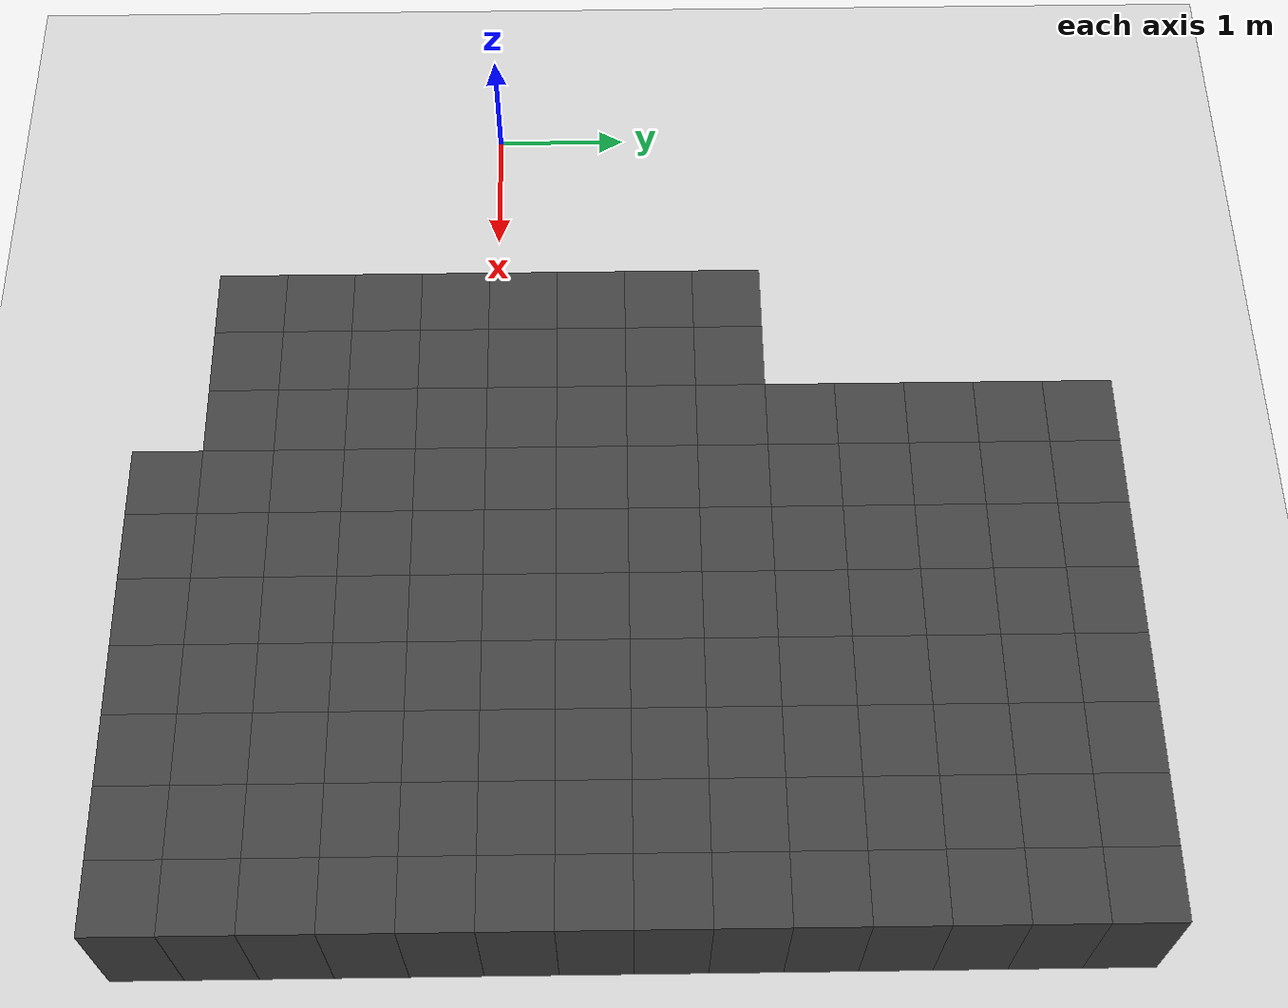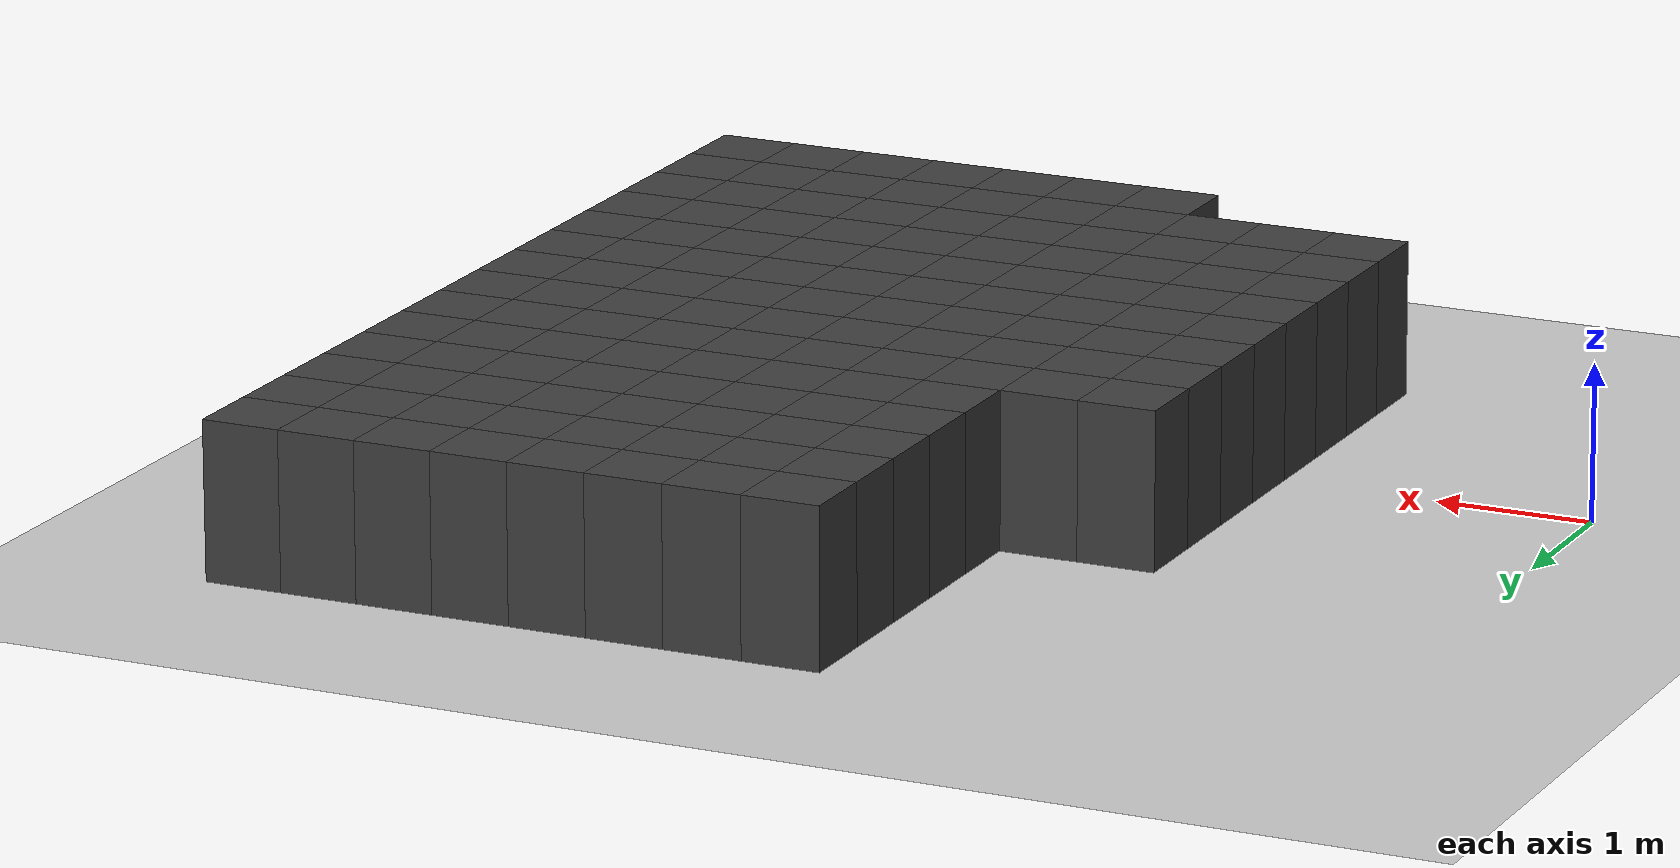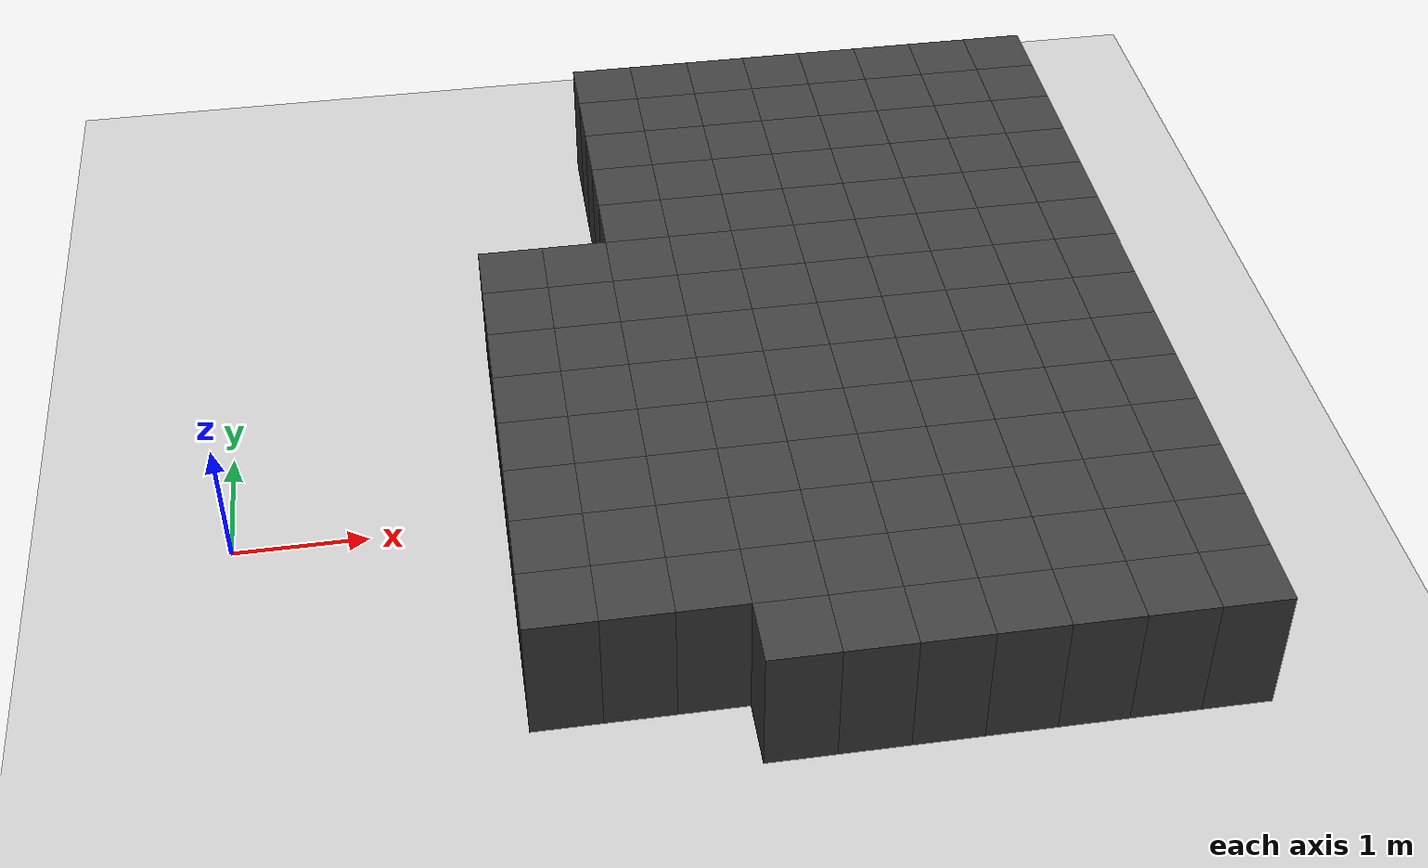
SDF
<sdf version="1.7">
 <world name="map_14190">
  <model name="ground_plane">
   <static>true</static>
   <link name="link">
    <collision name="collision">
     <geometry><plane><normal>0 0 1</normal><size>200 200</size></plane></geometry>
    </collision>
    <visual name="visual">
     <geometry><plane><normal>0 0 1</normal><size>200 200</size></plane></geometry>
     <material><ambient>0.8 0.8 0.8 1</ambient><diffuse>0.8 0.8 0.8 1</diffuse></material>
    </visual>
   </link>
  </model>
  <model name="maze_environment">
   <static>true</static>
   <link name="wall_578">
    <pose>3.250 4.250 0.500 0 0 0</pose>
    <collision name="col"><geometry><box><size>0.5 0.5 1.0</size></box></geometry></collision>
    <visual name="vis">
     <geometry><box><size>0.5 0.5 1.0</size></box></geometry>
     <material><ambient>0.15 0.15 0.15 1</ambient><diffuse>0.25 0.25 0.25 1</diffuse></material>
    </visual>
   </link>
   <link name="wall_579">
    <pose>3.750 4.250 0.500 0 0 0</pose>
    <collision name="col"><geometry><box><size>0.5 0.5 1.0</size></box></geometry></collision>
    <visual name="vis">
     <geometry><box><size>0.5 0.5 1.0</size></box></geometry>
     <material><ambient>0.15 0.15 0.15 1</ambient><diffuse>0.25 0.25 0.25 1</diffuse></material>
    </visual>
   </link>
   <link name="wall_580">
    <pose>4.250 4.250 0.500 0 0 0</pose>
    <collision name="col"><geometry><box><size>0.5 0.5 1.0</size></box></geometry></collision>
    <visual name="vis">
     <geometry><box><size>0.5 0.5 1.0</size></box></geometry>
     <material><ambient>0.15 0.15 0.15 1</ambient><diffuse>0.25 0.25 0.25 1</diffuse></material>
    </visual>
   </link>
   <link name="wall_581">
    <pose>4.750 4.250 0.500 0 0 0</pose>
    <collision name="col"><geometry><box><size>0.5 0.5 1.0</size></box></geometry></collision>
    <visual name="vis">
     <geometry><box><size>0.5 0.5 1.0</size></box></geometry>
     <material><ambient>0.15 0.15 0.15 1</ambient><diffuse>0.25 0.25 0.25 1</diffuse></material>
    </visual>
   </link>
   <link name="wall_582">
    <pose>5.250 4.250 0.500 0 0 0</pose>
    <collision name="col"><geometry><box><size>0.5 0.5 1.0</size></box></geometry></collision>
    <visual name="vis">
     <geometry><box><size>0.5 0.5 1.0</size></box></geometry>
     <material><ambient>0.15 0.15 0.15 1</ambient><diffuse>0.25 0.25 0.25 1</diffuse></material>
    </visual>
   </link>
   <link name="wall_583">
    <pose>5.750 4.250 0.500 0 0 0</pose>
    <collision name="col"><geometry><box><size>0.5 0.5 1.0</size></box></geometry></collision>
    <visual name="vis">
     <geometry><box><size>0.5 0.5 1.0</size></box></geometry>
     <material><ambient>0.15 0.15 0.15 1</ambient><diffuse>0.25 0.25 0.25 1</diffuse></material>
    </visual>
   </link>
   <link name="wall_584">
    <pose>6.250 4.250 0.500 0 0 0</pose>
    <collision name="col"><geometry><box><size>0.5 0.5 1.0</size></box></geometry></collision>
    <visual name="vis">
     <geometry><box><size>0.5 0.5 1.0</size></box></geometry>
     <material><ambient>0.15 0.15 0.15 1</ambient><diffuse>0.25 0.25 0.25 1</diffuse></material>
    </visual>
   </link>
   <link name="wall_585">
    <pose>6.750 4.250 0.500 0 0 0</pose>
    <collision name="col"><geometry><box><size>0.5 0.5 1.0</size></box></geometry></collision>
    <visual name="vis">
     <geometry><box><size>0.5 0.5 1.0</size></box></geometry>
     <material><ambient>0.15 0.15 0.15 1</ambient><diffuse>0.25 0.25 0.25 1</diffuse></material>
    </visual>
   </link>
   <link name="wall_608">
    <pose>3.250 3.750 0.500 0 0 0</pose>
    <collision name="col"><geometry><box><size>0.5 0.5 1.0</size></box></geometry></collision>
    <visual name="vis">
     <geometry><box><size>0.5 0.5 1.0</size></box></geometry>
     <material><ambient>0.15 0.15 0.15 1</ambient><diffuse>0.25 0.25 0.25 1</diffuse></material>
    </visual>
   </link>
   <link name="wall_609">
    <pose>3.750 3.750 0.500 0 0 0</pose>
    <collision name="col"><geometry><box><size>0.5 0.5 1.0</size></box></geometry></collision>
    <visual name="vis">
     <geometry><box><size>0.5 0.5 1.0</size></box></geometry>
     <material><ambient>0.15 0.15 0.15 1</ambient><diffuse>0.25 0.25 0.25 1</diffuse></material>
    </visual>
   </link>
   <link name="wall_610">
    <pose>4.250 3.750 0.500 0 0 0</pose>
    <collision name="col"><geometry><box><size>0.5 0.5 1.0</size></box></geometry></collision>
    <visual name="vis">
     <geometry><box><size>0.5 0.5 1.0</size></box></geometry>
     <material><ambient>0.15 0.15 0.15 1</ambient><diffuse>0.25 0.25 0.25 1</diffuse></material>
    </visual>
   </link>
   <link name="wall_611">
    <pose>4.750 3.750 0.500 0 0 0</pose>
    <collision name="col"><geometry><box><size>0.5 0.5 1.0</size></box></geometry></collision>
    <visual name="vis">
     <geometry><box><size>0.5 0.5 1.0</size></box></geometry>
     <material><ambient>0.15 0.15 0.15 1</ambient><diffuse>0.25 0.25 0.25 1</diffuse></material>
    </visual>
   </link>
   <link name="wall_612">
    <pose>5.250 3.750 0.500 0 0 0</pose>
    <collision name="col"><geometry><box><size>0.5 0.5 1.0</size></box></geometry></collision>
    <visual name="vis">
     <geometry><box><size>0.5 0.5 1.0</size></box></geometry>
     <material><ambient>0.15 0.15 0.15 1</ambient><diffuse>0.25 0.25 0.25 1</diffuse></material>
    </visual>
   </link>
   <link name="wall_613">
    <pose>5.750 3.750 0.500 0 0 0</pose>
    <collision name="col"><geometry><box><size>0.5 0.5 1.0</size></box></geometry></collision>
    <visual name="vis">
     <geometry><box><size>0.5 0.5 1.0</size></box></geometry>
     <material><ambient>0.15 0.15 0.15 1</ambient><diffuse>0.25 0.25 0.25 1</diffuse></material>
    </visual>
   </link>
   <link name="wall_614">
    <pose>6.250 3.750 0.500 0 0 0</pose>
    <collision name="col"><geometry><box><size>0.5 0.5 1.0</size></box></geometry></collision>
    <visual name="vis">
     <geometry><box><size>0.5 0.5 1.0</size></box></geometry>
     <material><ambient>0.15 0.15 0.15 1</ambient><diffuse>0.25 0.25 0.25 1</diffuse></material>
    </visual>
   </link>
   <link name="wall_615">
    <pose>6.750 3.750 0.500 0 0 0</pose>
    <collision name="col"><geometry><box><size>0.5 0.5 1.0</size></box></geometry></collision>
    <visual name="vis">
     <geometry><box><size>0.5 0.5 1.0</size></box></geometry>
     <material><ambient>0.15 0.15 0.15 1</ambient><diffuse>0.25 0.25 0.25 1</diffuse></material>
    </visual>
   </link>
   <link name="wall_641">
    <pose>3.250 3.250 0.500 0 0 0</pose>
    <collision name="col"><geometry><box><size>0.5 0.5 1.0</size></box></geometry></collision>
    <visual name="vis">
     <geometry><box><size>0.5 0.5 1.0</size></box></geometry>
     <material><ambient>0.15 0.15 0.15 1</ambient><diffuse>0.25 0.25 0.25 1</diffuse></material>
    </visual>
   </link>
   <link name="wall_642">
    <pose>3.750 3.250 0.500 0 0 0</pose>
    <collision name="col"><geometry><box><size>0.5 0.5 1.0</size></box></geometry></collision>
    <visual name="vis">
     <geometry><box><size>0.5 0.5 1.0</size></box></geometry>
     <material><ambient>0.15 0.15 0.15 1</ambient><diffuse>0.25 0.25 0.25 1</diffuse></material>
    </visual>
   </link>
   <link name="wall_643">
    <pose>4.250 3.250 0.500 0 0 0</pose>
    <collision name="col"><geometry><box><size>0.5 0.5 1.0</size></box></geometry></collision>
    <visual name="vis">
     <geometry><box><size>0.5 0.5 1.0</size></box></geometry>
     <material><ambient>0.15 0.15 0.15 1</ambient><diffuse>0.25 0.25 0.25 1</diffuse></material>
    </visual>
   </link>
   <link name="wall_644">
    <pose>4.750 3.250 0.500 0 0 0</pose>
    <collision name="col"><geometry><box><size>0.5 0.5 1.0</size></box></geometry></collision>
    <visual name="vis">
     <geometry><box><size>0.5 0.5 1.0</size></box></geometry>
     <material><ambient>0.15 0.15 0.15 1</ambient><diffuse>0.25 0.25 0.25 1</diffuse></material>
    </visual>
   </link>
   <link name="wall_645">
    <pose>5.250 3.250 0.500 0 0 0</pose>
    <collision name="col"><geometry><box><size>0.5 0.5 1.0</size></box></geometry></collision>
    <visual name="vis">
     <geometry><box><size>0.5 0.5 1.0</size></box></geometry>
     <material><ambient>0.15 0.15 0.15 1</ambient><diffuse>0.25 0.25 0.25 1</diffuse></material>
    </visual>
   </link>
   <link name="wall_646">
    <pose>5.750 3.250 0.500 0 0 0</pose>
    <collision name="col"><geometry><box><size>0.5 0.5 1.0</size></box></geometry></collision>
    <visual name="vis">
     <geometry><box><size>0.5 0.5 1.0</size></box></geometry>
     <material><ambient>0.15 0.15 0.15 1</ambient><diffuse>0.25 0.25 0.25 1</diffuse></material>
    </visual>
   </link>
   <link name="wall_647">
    <pose>6.250 3.250 0.500 0 0 0</pose>
    <collision name="col"><geometry><box><size>0.5 0.5 1.0</size></box></geometry></collision>
    <visual name="vis">
     <geometry><box><size>0.5 0.5 1.0</size></box></geometry>
     <material><ambient>0.15 0.15 0.15 1</ambient><diffuse>0.25 0.25 0.25 1</diffuse></material>
    </visual>
   </link>
   <link name="wall_648">
    <pose>6.750 3.250 0.500 0 0 0</pose>
    <collision name="col"><geometry><box><size>0.5 0.5 1.0</size></box></geometry></collision>
    <visual name="vis">
     <geometry><box><size>0.5 0.5 1.0</size></box></geometry>
     <material><ambient>0.15 0.15 0.15 1</ambient><diffuse>0.25 0.25 0.25 1</diffuse></material>
    </visual>
   </link>
   <link name="wall_683">
    <pose>3.250 2.750 0.500 0 0 0</pose>
    <collision name="col"><geometry><box><size>0.5 0.5 1.0</size></box></geometry></collision>
    <visual name="vis">
     <geometry><box><size>0.5 0.5 1.0</size></box></geometry>
     <material><ambient>0.15 0.15 0.15 1</ambient><diffuse>0.25 0.25 0.25 1</diffuse></material>
    </visual>
   </link>
   <link name="wall_684">
    <pose>3.750 2.750 0.500 0 0 0</pose>
    <collision name="col"><geometry><box><size>0.5 0.5 1.0</size></box></geometry></collision>
    <visual name="vis">
     <geometry><box><size>0.5 0.5 1.0</size></box></geometry>
     <material><ambient>0.15 0.15 0.15 1</ambient><diffuse>0.25 0.25 0.25 1</diffuse></material>
    </visual>
   </link>
   <link name="wall_685">
    <pose>4.250 2.750 0.500 0 0 0</pose>
    <collision name="col"><geometry><box><size>0.5 0.5 1.0</size></box></geometry></collision>
    <visual name="vis">
     <geometry><box><size>0.5 0.5 1.0</size></box></geometry>
     <material><ambient>0.15 0.15 0.15 1</ambient><diffuse>0.25 0.25 0.25 1</diffuse></material>
    </visual>
   </link>
   <link name="wall_686">
    <pose>4.750 2.750 0.500 0 0 0</pose>
    <collision name="col"><geometry><box><size>0.5 0.5 1.0</size></box></geometry></collision>
    <visual name="vis">
     <geometry><box><size>0.5 0.5 1.0</size></box></geometry>
     <material><ambient>0.15 0.15 0.15 1</ambient><diffuse>0.25 0.25 0.25 1</diffuse></material>
    </visual>
   </link>
   <link name="wall_687">
    <pose>5.250 2.750 0.500 0 0 0</pose>
    <collision name="col"><geometry><box><size>0.5 0.5 1.0</size></box></geometry></collision>
    <visual name="vis">
     <geometry><box><size>0.5 0.5 1.0</size></box></geometry>
     <material><ambient>0.15 0.15 0.15 1</ambient><diffuse>0.25 0.25 0.25 1</diffuse></material>
    </visual>
   </link>
   <link name="wall_688">
    <pose>5.750 2.750 0.500 0 0 0</pose>
    <collision name="col"><geometry><box><size>0.5 0.5 1.0</size></box></geometry></collision>
    <visual name="vis">
     <geometry><box><size>0.5 0.5 1.0</size></box></geometry>
     <material><ambient>0.15 0.15 0.15 1</ambient><diffuse>0.25 0.25 0.25 1</diffuse></material>
    </visual>
   </link>
   <link name="wall_689">
    <pose>6.250 2.750 0.500 0 0 0</pose>
    <collision name="col"><geometry><box><size>0.5 0.5 1.0</size></box></geometry></collision>
    <visual name="vis">
     <geometry><box><size>0.5 0.5 1.0</size></box></geometry>
     <material><ambient>0.15 0.15 0.15 1</ambient><diffuse>0.25 0.25 0.25 1</diffuse></material>
    </visual>
   </link>
   <link name="wall_690">
    <pose>6.750 2.750 0.500 0 0 0</pose>
    <collision name="col"><geometry><box><size>0.5 0.5 1.0</size></box></geometry></collision>
    <visual name="vis">
     <geometry><box><size>0.5 0.5 1.0</size></box></geometry>
     <material><ambient>0.15 0.15 0.15 1</ambient><diffuse>0.25 0.25 0.25 1</diffuse></material>
    </visual>
   </link>
   <link name="wall_725">
    <pose>3.250 2.250 0.500 0 0 0</pose>
    <collision name="col"><geometry><box><size>0.5 0.5 1.0</size></box></geometry></collision>
    <visual name="vis">
     <geometry><box><size>0.5 0.5 1.0</size></box></geometry>
     <material><ambient>0.15 0.15 0.15 1</ambient><diffuse>0.25 0.25 0.25 1</diffuse></material>
    </visual>
   </link>
   <link name="wall_726">
    <pose>3.750 2.250 0.500 0 0 0</pose>
    <collision name="col"><geometry><box><size>0.5 0.5 1.0</size></box></geometry></collision>
    <visual name="vis">
     <geometry><box><size>0.5 0.5 1.0</size></box></geometry>
     <material><ambient>0.15 0.15 0.15 1</ambient><diffuse>0.25 0.25 0.25 1</diffuse></material>
    </visual>
   </link>
   <link name="wall_727">
    <pose>4.250 2.250 0.500 0 0 0</pose>
    <collision name="col"><geometry><box><size>0.5 0.5 1.0</size></box></geometry></collision>
    <visual name="vis">
     <geometry><box><size>0.5 0.5 1.0</size></box></geometry>
     <material><ambient>0.15 0.15 0.15 1</ambient><diffuse>0.25 0.25 0.25 1</diffuse></material>
    </visual>
   </link>
   <link name="wall_728">
    <pose>4.750 2.250 0.500 0 0 0</pose>
    <collision name="col"><geometry><box><size>0.5 0.5 1.0</size></box></geometry></collision>
    <visual name="vis">
     <geometry><box><size>0.5 0.5 1.0</size></box></geometry>
     <material><ambient>0.15 0.15 0.15 1</ambient><diffuse>0.25 0.25 0.25 1</diffuse></material>
    </visual>
   </link>
   <link name="wall_729">
    <pose>5.250 2.250 0.500 0 0 0</pose>
    <collision name="col"><geometry><box><size>0.5 0.5 1.0</size></box></geometry></collision>
    <visual name="vis">
     <geometry><box><size>0.5 0.5 1.0</size></box></geometry>
     <material><ambient>0.15 0.15 0.15 1</ambient><diffuse>0.25 0.25 0.25 1</diffuse></material>
    </visual>
   </link>
   <link name="wall_730">
    <pose>5.750 2.250 0.500 0 0 0</pose>
    <collision name="col"><geometry><box><size>0.5 0.5 1.0</size></box></geometry></collision>
    <visual name="vis">
     <geometry><box><size>0.5 0.5 1.0</size></box></geometry>
     <material><ambient>0.15 0.15 0.15 1</ambient><diffuse>0.25 0.25 0.25 1</diffuse></material>
    </visual>
   </link>
   <link name="wall_731">
    <pose>6.250 2.250 0.500 0 0 0</pose>
    <collision name="col"><geometry><box><size>0.5 0.5 1.0</size></box></geometry></collision>
    <visual name="vis">
     <geometry><box><size>0.5 0.5 1.0</size></box></geometry>
     <material><ambient>0.15 0.15 0.15 1</ambient><diffuse>0.25 0.25 0.25 1</diffuse></material>
    </visual>
   </link>
   <link name="wall_732">
    <pose>6.750 2.250 0.500 0 0 0</pose>
    <collision name="col"><geometry><box><size>0.5 0.5 1.0</size></box></geometry></collision>
    <visual name="vis">
     <geometry><box><size>0.5 0.5 1.0</size></box></geometry>
     <material><ambient>0.15 0.15 0.15 1</ambient><diffuse>0.25 0.25 0.25 1</diffuse></material>
    </visual>
   </link>
   <link name="wall_765">
    <pose>2.250 1.750 0.500 0 0 0</pose>
    <collision name="col"><geometry><box><size>0.5 0.5 1.0</size></box></geometry></collision>
    <visual name="vis">
     <geometry><box><size>0.5 0.5 1.0</size></box></geometry>
     <material><ambient>0.15 0.15 0.15 1</ambient><diffuse>0.25 0.25 0.25 1</diffuse></material>
    </visual>
   </link>
   <link name="wall_766">
    <pose>2.750 1.750 0.500 0 0 0</pose>
    <collision name="col"><geometry><box><size>0.5 0.5 1.0</size></box></geometry></collision>
    <visual name="vis">
     <geometry><box><size>0.5 0.5 1.0</size></box></geometry>
     <material><ambient>0.15 0.15 0.15 1</ambient><diffuse>0.25 0.25 0.25 1</diffuse></material>
    </visual>
   </link>
   <link name="wall_767">
    <pose>3.250 1.750 0.500 0 0 0</pose>
    <collision name="col"><geometry><box><size>0.5 0.5 1.0</size></box></geometry></collision>
    <visual name="vis">
     <geometry><box><size>0.5 0.5 1.0</size></box></geometry>
     <material><ambient>0.15 0.15 0.15 1</ambient><diffuse>0.25 0.25 0.25 1</diffuse></material>
    </visual>
   </link>
   <link name="wall_768">
    <pose>3.750 1.750 0.500 0 0 0</pose>
    <collision name="col"><geometry><box><size>0.5 0.5 1.0</size></box></geometry></collision>
    <visual name="vis">
     <geometry><box><size>0.5 0.5 1.0</size></box></geometry>
     <material><ambient>0.15 0.15 0.15 1</ambient><diffuse>0.25 0.25 0.25 1</diffuse></material>
    </visual>
   </link>
   <link name="wall_769">
    <pose>4.250 1.750 0.500 0 0 0</pose>
    <collision name="col"><geometry><box><size>0.5 0.5 1.0</size></box></geometry></collision>
    <visual name="vis">
     <geometry><box><size>0.5 0.5 1.0</size></box></geometry>
     <material><ambient>0.15 0.15 0.15 1</ambient><diffuse>0.25 0.25 0.25 1</diffuse></material>
    </visual>
   </link>
   <link name="wall_770">
    <pose>4.750 1.750 0.500 0 0 0</pose>
    <collision name="col"><geometry><box><size>0.5 0.5 1.0</size></box></geometry></collision>
    <visual name="vis">
     <geometry><box><size>0.5 0.5 1.0</size></box></geometry>
     <material><ambient>0.15 0.15 0.15 1</ambient><diffuse>0.25 0.25 0.25 1</diffuse></material>
    </visual>
   </link>
   <link name="wall_771">
    <pose>5.250 1.750 0.500 0 0 0</pose>
    <collision name="col"><geometry><box><size>0.5 0.5 1.0</size></box></geometry></collision>
    <visual name="vis">
     <geometry><box><size>0.5 0.5 1.0</size></box></geometry>
     <material><ambient>0.15 0.15 0.15 1</ambient><diffuse>0.25 0.25 0.25 1</diffuse></material>
    </visual>
   </link>
   <link name="wall_772">
    <pose>5.750 1.750 0.500 0 0 0</pose>
    <collision name="col"><geometry><box><size>0.5 0.5 1.0</size></box></geometry></collision>
    <visual name="vis">
     <geometry><box><size>0.5 0.5 1.0</size></box></geometry>
     <material><ambient>0.15 0.15 0.15 1</ambient><diffuse>0.25 0.25 0.25 1</diffuse></material>
    </visual>
   </link>
   <link name="wall_773">
    <pose>6.250 1.750 0.500 0 0 0</pose>
    <collision name="col"><geometry><box><size>0.5 0.5 1.0</size></box></geometry></collision>
    <visual name="vis">
     <geometry><box><size>0.5 0.5 1.0</size></box></geometry>
     <material><ambient>0.15 0.15 0.15 1</ambient><diffuse>0.25 0.25 0.25 1</diffuse></material>
    </visual>
   </link>
   <link name="wall_774">
    <pose>6.750 1.750 0.500 0 0 0</pose>
    <collision name="col"><geometry><box><size>0.5 0.5 1.0</size></box></geometry></collision>
    <visual name="vis">
     <geometry><box><size>0.5 0.5 1.0</size></box></geometry>
     <material><ambient>0.15 0.15 0.15 1</ambient><diffuse>0.25 0.25 0.25 1</diffuse></material>
    </visual>
   </link>
   <link name="wall_799">
    <pose>2.250 1.250 0.500 0 0 0</pose>
    <collision name="col"><geometry><box><size>0.5 0.5 1.0</size></box></geometry></collision>
    <visual name="vis">
     <geometry><box><size>0.5 0.5 1.0</size></box></geometry>
     <material><ambient>0.15 0.15 0.15 1</ambient><diffuse>0.25 0.25 0.25 1</diffuse></material>
    </visual>
   </link>
   <link name="wall_800">
    <pose>2.750 1.250 0.500 0 0 0</pose>
    <collision name="col"><geometry><box><size>0.5 0.5 1.0</size></box></geometry></collision>
    <visual name="vis">
     <geometry><box><size>0.5 0.5 1.0</size></box></geometry>
     <material><ambient>0.15 0.15 0.15 1</ambient><diffuse>0.25 0.25 0.25 1</diffuse></material>
    </visual>
   </link>
   <link name="wall_801">
    <pose>3.250 1.250 0.500 0 0 0</pose>
    <collision name="col"><geometry><box><size>0.5 0.5 1.0</size></box></geometry></collision>
    <visual name="vis">
     <geometry><box><size>0.5 0.5 1.0</size></box></geometry>
     <material><ambient>0.15 0.15 0.15 1</ambient><diffuse>0.25 0.25 0.25 1</diffuse></material>
    </visual>
   </link>
   <link name="wall_802">
    <pose>3.750 1.250 0.500 0 0 0</pose>
    <collision name="col"><geometry><box><size>0.5 0.5 1.0</size></box></geometry></collision>
    <visual name="vis">
     <geometry><box><size>0.5 0.5 1.0</size></box></geometry>
     <material><ambient>0.15 0.15 0.15 1</ambient><diffuse>0.25 0.25 0.25 1</diffuse></material>
    </visual>
   </link>
   <link name="wall_803">
    <pose>4.250 1.250 0.500 0 0 0</pose>
    <collision name="col"><geometry><box><size>0.5 0.5 1.0</size></box></geometry></collision>
    <visual name="vis">
     <geometry><box><size>0.5 0.5 1.0</size></box></geometry>
     <material><ambient>0.15 0.15 0.15 1</ambient><diffuse>0.25 0.25 0.25 1</diffuse></material>
    </visual>
   </link>
   <link name="wall_804">
    <pose>4.750 1.250 0.500 0 0 0</pose>
    <collision name="col"><geometry><box><size>0.5 0.5 1.0</size></box></geometry></collision>
    <visual name="vis">
     <geometry><box><size>0.5 0.5 1.0</size></box></geometry>
     <material><ambient>0.15 0.15 0.15 1</ambient><diffuse>0.25 0.25 0.25 1</diffuse></material>
    </visual>
   </link>
   <link name="wall_805">
    <pose>5.250 1.250 0.500 0 0 0</pose>
    <collision name="col"><geometry><box><size>0.5 0.5 1.0</size></box></geometry></collision>
    <visual name="vis">
     <geometry><box><size>0.5 0.5 1.0</size></box></geometry>
     <material><ambient>0.15 0.15 0.15 1</ambient><diffuse>0.25 0.25 0.25 1</diffuse></material>
    </visual>
   </link>
   <link name="wall_806">
    <pose>5.750 1.250 0.500 0 0 0</pose>
    <collision name="col"><geometry><box><size>0.5 0.5 1.0</size></box></geometry></collision>
    <visual name="vis">
     <geometry><box><size>0.5 0.5 1.0</size></box></geometry>
     <material><ambient>0.15 0.15 0.15 1</ambient><diffuse>0.25 0.25 0.25 1</diffuse></material>
    </visual>
   </link>
   <link name="wall_807">
    <pose>6.250 1.250 0.500 0 0 0</pose>
    <collision name="col"><geometry><box><size>0.5 0.5 1.0</size></box></geometry></collision>
    <visual name="vis">
     <geometry><box><size>0.5 0.5 1.0</size></box></geometry>
     <material><ambient>0.15 0.15 0.15 1</ambient><diffuse>0.25 0.25 0.25 1</diffuse></material>
    </visual>
   </link>
   <link name="wall_808">
    <pose>6.750 1.250 0.500 0 0 0</pose>
    <collision name="col"><geometry><box><size>0.5 0.5 1.0</size></box></geometry></collision>
    <visual name="vis">
     <geometry><box><size>0.5 0.5 1.0</size></box></geometry>
     <material><ambient>0.15 0.15 0.15 1</ambient><diffuse>0.25 0.25 0.25 1</diffuse></material>
    </visual>
   </link>
   <link name="wall_833">
    <pose>2.250 0.750 0.500 0 0 0</pose>
    <collision name="col"><geometry><box><size>0.5 0.5 1.0</size></box></geometry></collision>
    <visual name="vis">
     <geometry><box><size>0.5 0.5 1.0</size></box></geometry>
     <material><ambient>0.15 0.15 0.15 1</ambient><diffuse>0.25 0.25 0.25 1</diffuse></material>
    </visual>
   </link>
   <link name="wall_834">
    <pose>2.750 0.750 0.500 0 0 0</pose>
    <collision name="col"><geometry><box><size>0.5 0.5 1.0</size></box></geometry></collision>
    <visual name="vis">
     <geometry><box><size>0.5 0.5 1.0</size></box></geometry>
     <material><ambient>0.15 0.15 0.15 1</ambient><diffuse>0.25 0.25 0.25 1</diffuse></material>
    </visual>
   </link>
   <link name="wall_835">
    <pose>3.250 0.750 0.500 0 0 0</pose>
    <collision name="col"><geometry><box><size>0.5 0.5 1.0</size></box></geometry></collision>
    <visual name="vis">
     <geometry><box><size>0.5 0.5 1.0</size></box></geometry>
     <material><ambient>0.15 0.15 0.15 1</ambient><diffuse>0.25 0.25 0.25 1</diffuse></material>
    </visual>
   </link>
   <link name="wall_836">
    <pose>3.750 0.750 0.500 0 0 0</pose>
    <collision name="col"><geometry><box><size>0.5 0.5 1.0</size></box></geometry></collision>
    <visual name="vis">
     <geometry><box><size>0.5 0.5 1.0</size></box></geometry>
     <material><ambient>0.15 0.15 0.15 1</ambient><diffuse>0.25 0.25 0.25 1</diffuse></material>
    </visual>
   </link>
   <link name="wall_837">
    <pose>4.250 0.750 0.500 0 0 0</pose>
    <collision name="col"><geometry><box><size>0.5 0.5 1.0</size></box></geometry></collision>
    <visual name="vis">
     <geometry><box><size>0.5 0.5 1.0</size></box></geometry>
     <material><ambient>0.15 0.15 0.15 1</ambient><diffuse>0.25 0.25 0.25 1</diffuse></material>
    </visual>
   </link>
   <link name="wall_838">
    <pose>4.750 0.750 0.500 0 0 0</pose>
    <collision name="col"><geometry><box><size>0.5 0.5 1.0</size></box></geometry></collision>
    <visual name="vis">
     <geometry><box><size>0.5 0.5 1.0</size></box></geometry>
     <material><ambient>0.15 0.15 0.15 1</ambient><diffuse>0.25 0.25 0.25 1</diffuse></material>
    </visual>
   </link>
   <link name="wall_839">
    <pose>5.250 0.750 0.500 0 0 0</pose>
    <collision name="col"><geometry><box><size>0.5 0.5 1.0</size></box></geometry></collision>
    <visual name="vis">
     <geometry><box><size>0.5 0.5 1.0</size></box></geometry>
     <material><ambient>0.15 0.15 0.15 1</ambient><diffuse>0.25 0.25 0.25 1</diffuse></material>
    </visual>
   </link>
   <link name="wall_840">
    <pose>5.750 0.750 0.500 0 0 0</pose>
    <collision name="col"><geometry><box><size>0.5 0.5 1.0</size></box></geometry></collision>
    <visual name="vis">
     <geometry><box><size>0.5 0.5 1.0</size></box></geometry>
     <material><ambient>0.15 0.15 0.15 1</ambient><diffuse>0.25 0.25 0.25 1</diffuse></material>
    </visual>
   </link>
   <link name="wall_841">
    <pose>6.250 0.750 0.500 0 0 0</pose>
    <collision name="col"><geometry><box><size>0.5 0.5 1.0</size></box></geometry></collision>
    <visual name="vis">
     <geometry><box><size>0.5 0.5 1.0</size></box></geometry>
     <material><ambient>0.15 0.15 0.15 1</ambient><diffuse>0.25 0.25 0.25 1</diffuse></material>
    </visual>
   </link>
   <link name="wall_842">
    <pose>6.750 0.750 0.500 0 0 0</pose>
    <collision name="col"><geometry><box><size>0.5 0.5 1.0</size></box></geometry></collision>
    <visual name="vis">
     <geometry><box><size>0.5 0.5 1.0</size></box></geometry>
     <material><ambient>0.15 0.15 0.15 1</ambient><diffuse>0.25 0.25 0.25 1</diffuse></material>
    </visual>
   </link>
   <link name="wall_867">
    <pose>2.250 0.250 0.500 0 0 0</pose>
    <collision name="col"><geometry><box><size>0.5 0.5 1.0</size></box></geometry></collision>
    <visual name="vis">
     <geometry><box><size>0.5 0.5 1.0</size></box></geometry>
     <material><ambient>0.15 0.15 0.15 1</ambient><diffuse>0.25 0.25 0.25 1</diffuse></material>
    </visual>
   </link>
   <link name="wall_868">
    <pose>2.750 0.250 0.500 0 0 0</pose>
    <collision name="col"><geometry><box><size>0.5 0.5 1.0</size></box></geometry></collision>
    <visual name="vis">
     <geometry><box><size>0.5 0.5 1.0</size></box></geometry>
     <material><ambient>0.15 0.15 0.15 1</ambient><diffuse>0.25 0.25 0.25 1</diffuse></material>
    </visual>
   </link>
   <link name="wall_869">
    <pose>3.250 0.250 0.500 0 0 0</pose>
    <collision name="col"><geometry><box><size>0.5 0.5 1.0</size></box></geometry></collision>
    <visual name="vis">
     <geometry><box><size>0.5 0.5 1.0</size></box></geometry>
     <material><ambient>0.15 0.15 0.15 1</ambient><diffuse>0.25 0.25 0.25 1</diffuse></material>
    </visual>
   </link>
   <link name="wall_870">
    <pose>3.750 0.250 0.500 0 0 0</pose>
    <collision name="col"><geometry><box><size>0.5 0.5 1.0</size></box></geometry></collision>
    <visual name="vis">
     <geometry><box><size>0.5 0.5 1.0</size></box></geometry>
     <material><ambient>0.15 0.15 0.15 1</ambient><diffuse>0.25 0.25 0.25 1</diffuse></material>
    </visual>
   </link>
   <link name="wall_871">
    <pose>4.250 0.250 0.500 0 0 0</pose>
    <collision name="col"><geometry><box><size>0.5 0.5 1.0</size></box></geometry></collision>
    <visual name="vis">
     <geometry><box><size>0.5 0.5 1.0</size></box></geometry>
     <material><ambient>0.15 0.15 0.15 1</ambient><diffuse>0.25 0.25 0.25 1</diffuse></material>
    </visual>
   </link>
   <link name="wall_872">
    <pose>4.750 0.250 0.500 0 0 0</pose>
    <collision name="col"><geometry><box><size>0.5 0.5 1.0</size></box></geometry></collision>
    <visual name="vis">
     <geometry><box><size>0.5 0.5 1.0</size></box></geometry>
     <material><ambient>0.15 0.15 0.15 1</ambient><diffuse>0.25 0.25 0.25 1</diffuse></material>
    </visual>
   </link>
   <link name="wall_873">
    <pose>5.250 0.250 0.500 0 0 0</pose>
    <collision name="col"><geometry><box><size>0.5 0.5 1.0</size></box></geometry></collision>
    <visual name="vis">
     <geometry><box><size>0.5 0.5 1.0</size></box></geometry>
     <material><ambient>0.15 0.15 0.15 1</ambient><diffuse>0.25 0.25 0.25 1</diffuse></material>
    </visual>
   </link>
   <link name="wall_874">
    <pose>5.750 0.250 0.500 0 0 0</pose>
    <collision name="col"><geometry><box><size>0.5 0.5 1.0</size></box></geometry></collision>
    <visual name="vis">
     <geometry><box><size>0.5 0.5 1.0</size></box></geometry>
     <material><ambient>0.15 0.15 0.15 1</ambient><diffuse>0.25 0.25 0.25 1</diffuse></material>
    </visual>
   </link>
   <link name="wall_875">
    <pose>6.250 0.250 0.500 0 0 0</pose>
    <collision name="col"><geometry><box><size>0.5 0.5 1.0</size></box></geometry></collision>
    <visual name="vis">
     <geometry><box><size>0.5 0.5 1.0</size></box></geometry>
     <material><ambient>0.15 0.15 0.15 1</ambient><diffuse>0.25 0.25 0.25 1</diffuse></material>
    </visual>
   </link>
   <link name="wall_876">
    <pose>6.750 0.250 0.500 0 0 0</pose>
    <collision name="col"><geometry><box><size>0.5 0.5 1.0</size></box></geometry></collision>
    <visual name="vis">
     <geometry><box><size>0.5 0.5 1.0</size></box></geometry>
     <material><ambient>0.15 0.15 0.15 1</ambient><diffuse>0.25 0.25 0.25 1</diffuse></material>
    </visual>
   </link>
   <link name="wall_901">
    <pose>2.250 -0.250 0.500 0 0 0</pose>
    <collision name="col"><geometry><box><size>0.5 0.5 1.0</size></box></geometry></collision>
    <visual name="vis">
     <geometry><box><size>0.5 0.5 1.0</size></box></geometry>
     <material><ambient>0.15 0.15 0.15 1</ambient><diffuse>0.25 0.25 0.25 1</diffuse></material>
    </visual>
   </link>
   <link name="wall_902">
    <pose>2.750 -0.250 0.500 0 0 0</pose>
    <collision name="col"><geometry><box><size>0.5 0.5 1.0</size></box></geometry></collision>
    <visual name="vis">
     <geometry><box><size>0.5 0.5 1.0</size></box></geometry>
     <material><ambient>0.15 0.15 0.15 1</ambient><diffuse>0.25 0.25 0.25 1</diffuse></material>
    </visual>
   </link>
   <link name="wall_903">
    <pose>3.250 -0.250 0.500 0 0 0</pose>
    <collision name="col"><geometry><box><size>0.5 0.5 1.0</size></box></geometry></collision>
    <visual name="vis">
     <geometry><box><size>0.5 0.5 1.0</size></box></geometry>
     <material><ambient>0.15 0.15 0.15 1</ambient><diffuse>0.25 0.25 0.25 1</diffuse></material>
    </visual>
   </link>
   <link name="wall_904">
    <pose>3.750 -0.250 0.500 0 0 0</pose>
    <collision name="col"><geometry><box><size>0.5 0.5 1.0</size></box></geometry></collision>
    <visual name="vis">
     <geometry><box><size>0.5 0.5 1.0</size></box></geometry>
     <material><ambient>0.15 0.15 0.15 1</ambient><diffuse>0.25 0.25 0.25 1</diffuse></material>
    </visual>
   </link>
   <link name="wall_905">
    <pose>4.250 -0.250 0.500 0 0 0</pose>
    <collision name="col"><geometry><box><size>0.5 0.5 1.0</size></box></geometry></collision>
    <visual name="vis">
     <geometry><box><size>0.5 0.5 1.0</size></box></geometry>
     <material><ambient>0.15 0.15 0.15 1</ambient><diffuse>0.25 0.25 0.25 1</diffuse></material>
    </visual>
   </link>
   <link name="wall_906">
    <pose>4.750 -0.250 0.500 0 0 0</pose>
    <collision name="col"><geometry><box><size>0.5 0.5 1.0</size></box></geometry></collision>
    <visual name="vis">
     <geometry><box><size>0.5 0.5 1.0</size></box></geometry>
     <material><ambient>0.15 0.15 0.15 1</ambient><diffuse>0.25 0.25 0.25 1</diffuse></material>
    </visual>
   </link>
   <link name="wall_907">
    <pose>5.250 -0.250 0.500 0 0 0</pose>
    <collision name="col"><geometry><box><size>0.5 0.5 1.0</size></box></geometry></collision>
    <visual name="vis">
     <geometry><box><size>0.5 0.5 1.0</size></box></geometry>
     <material><ambient>0.15 0.15 0.15 1</ambient><diffuse>0.25 0.25 0.25 1</diffuse></material>
    </visual>
   </link>
   <link name="wall_908">
    <pose>5.750 -0.250 0.500 0 0 0</pose>
    <collision name="col"><geometry><box><size>0.5 0.5 1.0</size></box></geometry></collision>
    <visual name="vis">
     <geometry><box><size>0.5 0.5 1.0</size></box></geometry>
     <material><ambient>0.15 0.15 0.15 1</ambient><diffuse>0.25 0.25 0.25 1</diffuse></material>
    </visual>
   </link>
   <link name="wall_909">
    <pose>6.250 -0.250 0.500 0 0 0</pose>
    <collision name="col"><geometry><box><size>0.5 0.5 1.0</size></box></geometry></collision>
    <visual name="vis">
     <geometry><box><size>0.5 0.5 1.0</size></box></geometry>
     <material><ambient>0.15 0.15 0.15 1</ambient><diffuse>0.25 0.25 0.25 1</diffuse></material>
    </visual>
   </link>
   <link name="wall_910">
    <pose>6.750 -0.250 0.500 0 0 0</pose>
    <collision name="col"><geometry><box><size>0.5 0.5 1.0</size></box></geometry></collision>
    <visual name="vis">
     <geometry><box><size>0.5 0.5 1.0</size></box></geometry>
     <material><ambient>0.15 0.15 0.15 1</ambient><diffuse>0.25 0.25 0.25 1</diffuse></material>
    </visual>
   </link>
   <link name="wall_932">
    <pose>2.250 -0.750 0.500 0 0 0</pose>
    <collision name="col"><geometry><box><size>0.5 0.5 1.0</size></box></geometry></collision>
    <visual name="vis">
     <geometry><box><size>0.5 0.5 1.0</size></box></geometry>
     <material><ambient>0.15 0.15 0.15 1</ambient><diffuse>0.25 0.25 0.25 1</diffuse></material>
    </visual>
   </link>
   <link name="wall_933">
    <pose>2.750 -0.750 0.500 0 0 0</pose>
    <collision name="col"><geometry><box><size>0.5 0.5 1.0</size></box></geometry></collision>
    <visual name="vis">
     <geometry><box><size>0.5 0.5 1.0</size></box></geometry>
     <material><ambient>0.15 0.15 0.15 1</ambient><diffuse>0.25 0.25 0.25 1</diffuse></material>
    </visual>
   </link>
   <link name="wall_934">
    <pose>3.250 -0.750 0.500 0 0 0</pose>
    <collision name="col"><geometry><box><size>0.5 0.5 1.0</size></box></geometry></collision>
    <visual name="vis">
     <geometry><box><size>0.5 0.5 1.0</size></box></geometry>
     <material><ambient>0.15 0.15 0.15 1</ambient><diffuse>0.25 0.25 0.25 1</diffuse></material>
    </visual>
   </link>
   <link name="wall_935">
    <pose>3.750 -0.750 0.500 0 0 0</pose>
    <collision name="col"><geometry><box><size>0.5 0.5 1.0</size></box></geometry></collision>
    <visual name="vis">
     <geometry><box><size>0.5 0.5 1.0</size></box></geometry>
     <material><ambient>0.15 0.15 0.15 1</ambient><diffuse>0.25 0.25 0.25 1</diffuse></material>
    </visual>
   </link>
   <link name="wall_936">
    <pose>4.250 -0.750 0.500 0 0 0</pose>
    <collision name="col"><geometry><box><size>0.5 0.5 1.0</size></box></geometry></collision>
    <visual name="vis">
     <geometry><box><size>0.5 0.5 1.0</size></box></geometry>
     <material><ambient>0.15 0.15 0.15 1</ambient><diffuse>0.25 0.25 0.25 1</diffuse></material>
    </visual>
   </link>
   <link name="wall_937">
    <pose>4.750 -0.750 0.500 0 0 0</pose>
    <collision name="col"><geometry><box><size>0.5 0.5 1.0</size></box></geometry></collision>
    <visual name="vis">
     <geometry><box><size>0.5 0.5 1.0</size></box></geometry>
     <material><ambient>0.15 0.15 0.15 1</ambient><diffuse>0.25 0.25 0.25 1</diffuse></material>
    </visual>
   </link>
   <link name="wall_938">
    <pose>5.250 -0.750 0.500 0 0 0</pose>
    <collision name="col"><geometry><box><size>0.5 0.5 1.0</size></box></geometry></collision>
    <visual name="vis">
     <geometry><box><size>0.5 0.5 1.0</size></box></geometry>
     <material><ambient>0.15 0.15 0.15 1</ambient><diffuse>0.25 0.25 0.25 1</diffuse></material>
    </visual>
   </link>
   <link name="wall_939">
    <pose>5.750 -0.750 0.500 0 0 0</pose>
    <collision name="col"><geometry><box><size>0.5 0.5 1.0</size></box></geometry></collision>
    <visual name="vis">
     <geometry><box><size>0.5 0.5 1.0</size></box></geometry>
     <material><ambient>0.15 0.15 0.15 1</ambient><diffuse>0.25 0.25 0.25 1</diffuse></material>
    </visual>
   </link>
   <link name="wall_940">
    <pose>6.250 -0.750 0.500 0 0 0</pose>
    <collision name="col"><geometry><box><size>0.5 0.5 1.0</size></box></geometry></collision>
    <visual name="vis">
     <geometry><box><size>0.5 0.5 1.0</size></box></geometry>
     <material><ambient>0.15 0.15 0.15 1</ambient><diffuse>0.25 0.25 0.25 1</diffuse></material>
    </visual>
   </link>
   <link name="wall_941">
    <pose>6.750 -0.750 0.500 0 0 0</pose>
    <collision name="col"><geometry><box><size>0.5 0.5 1.0</size></box></geometry></collision>
    <visual name="vis">
     <geometry><box><size>0.5 0.5 1.0</size></box></geometry>
     <material><ambient>0.15 0.15 0.15 1</ambient><diffuse>0.25 0.25 0.25 1</diffuse></material>
    </visual>
   </link>
   <link name="wall_965">
    <pose>2.250 -1.250 0.500 0 0 0</pose>
    <collision name="col"><geometry><box><size>0.5 0.5 1.0</size></box></geometry></collision>
    <visual name="vis">
     <geometry><box><size>0.5 0.5 1.0</size></box></geometry>
     <material><ambient>0.15 0.15 0.15 1</ambient><diffuse>0.25 0.25 0.25 1</diffuse></material>
    </visual>
   </link>
   <link name="wall_966">
    <pose>2.750 -1.250 0.500 0 0 0</pose>
    <collision name="col"><geometry><box><size>0.5 0.5 1.0</size></box></geometry></collision>
    <visual name="vis">
     <geometry><box><size>0.5 0.5 1.0</size></box></geometry>
     <material><ambient>0.15 0.15 0.15 1</ambient><diffuse>0.25 0.25 0.25 1</diffuse></material>
    </visual>
   </link>
   <link name="wall_967">
    <pose>3.250 -1.250 0.500 0 0 0</pose>
    <collision name="col"><geometry><box><size>0.5 0.5 1.0</size></box></geometry></collision>
    <visual name="vis">
     <geometry><box><size>0.5 0.5 1.0</size></box></geometry>
     <material><ambient>0.15 0.15 0.15 1</ambient><diffuse>0.25 0.25 0.25 1</diffuse></material>
    </visual>
   </link>
   <link name="wall_968">
    <pose>3.750 -1.250 0.500 0 0 0</pose>
    <collision name="col"><geometry><box><size>0.5 0.5 1.0</size></box></geometry></collision>
    <visual name="vis">
     <geometry><box><size>0.5 0.5 1.0</size></box></geometry>
     <material><ambient>0.15 0.15 0.15 1</ambient><diffuse>0.25 0.25 0.25 1</diffuse></material>
    </visual>
   </link>
   <link name="wall_969">
    <pose>4.250 -1.250 0.500 0 0 0</pose>
    <collision name="col"><geometry><box><size>0.5 0.5 1.0</size></box></geometry></collision>
    <visual name="vis">
     <geometry><box><size>0.5 0.5 1.0</size></box></geometry>
     <material><ambient>0.15 0.15 0.15 1</ambient><diffuse>0.25 0.25 0.25 1</diffuse></material>
    </visual>
   </link>
   <link name="wall_970">
    <pose>4.750 -1.250 0.500 0 0 0</pose>
    <collision name="col"><geometry><box><size>0.5 0.5 1.0</size></box></geometry></collision>
    <visual name="vis">
     <geometry><box><size>0.5 0.5 1.0</size></box></geometry>
     <material><ambient>0.15 0.15 0.15 1</ambient><diffuse>0.25 0.25 0.25 1</diffuse></material>
    </visual>
   </link>
   <link name="wall_971">
    <pose>5.250 -1.250 0.500 0 0 0</pose>
    <collision name="col"><geometry><box><size>0.5 0.5 1.0</size></box></geometry></collision>
    <visual name="vis">
     <geometry><box><size>0.5 0.5 1.0</size></box></geometry>
     <material><ambient>0.15 0.15 0.15 1</ambient><diffuse>0.25 0.25 0.25 1</diffuse></material>
    </visual>
   </link>
   <link name="wall_972">
    <pose>5.750 -1.250 0.500 0 0 0</pose>
    <collision name="col"><geometry><box><size>0.5 0.5 1.0</size></box></geometry></collision>
    <visual name="vis">
     <geometry><box><size>0.5 0.5 1.0</size></box></geometry>
     <material><ambient>0.15 0.15 0.15 1</ambient><diffuse>0.25 0.25 0.25 1</diffuse></material>
    </visual>
   </link>
   <link name="wall_973">
    <pose>6.250 -1.250 0.500 0 0 0</pose>
    <collision name="col"><geometry><box><size>0.5 0.5 1.0</size></box></geometry></collision>
    <visual name="vis">
     <geometry><box><size>0.5 0.5 1.0</size></box></geometry>
     <material><ambient>0.15 0.15 0.15 1</ambient><diffuse>0.25 0.25 0.25 1</diffuse></material>
    </visual>
   </link>
   <link name="wall_974">
    <pose>6.750 -1.250 0.500 0 0 0</pose>
    <collision name="col"><geometry><box><size>0.5 0.5 1.0</size></box></geometry></collision>
    <visual name="vis">
     <geometry><box><size>0.5 0.5 1.0</size></box></geometry>
     <material><ambient>0.15 0.15 0.15 1</ambient><diffuse>0.25 0.25 0.25 1</diffuse></material>
    </visual>
   </link>
   <link name="wall_998">
    <pose>2.250 -1.750 0.500 0 0 0</pose>
    <collision name="col"><geometry><box><size>0.5 0.5 1.0</size></box></geometry></collision>
    <visual name="vis">
     <geometry><box><size>0.5 0.5 1.0</size></box></geometry>
     <material><ambient>0.15 0.15 0.15 1</ambient><diffuse>0.25 0.25 0.25 1</diffuse></material>
    </visual>
   </link>
   <link name="wall_999">
    <pose>2.750 -1.750 0.500 0 0 0</pose>
    <collision name="col"><geometry><box><size>0.5 0.5 1.0</size></box></geometry></collision>
    <visual name="vis">
     <geometry><box><size>0.5 0.5 1.0</size></box></geometry>
     <material><ambient>0.15 0.15 0.15 1</ambient><diffuse>0.25 0.25 0.25 1</diffuse></material>
    </visual>
   </link>
   <link name="wall_1000">
    <pose>3.250 -1.750 0.500 0 0 0</pose>
    <collision name="col"><geometry><box><size>0.5 0.5 1.0</size></box></geometry></collision>
    <visual name="vis">
     <geometry><box><size>0.5 0.5 1.0</size></box></geometry>
     <material><ambient>0.15 0.15 0.15 1</ambient><diffuse>0.25 0.25 0.25 1</diffuse></material>
    </visual>
   </link>
   <link name="wall_1001">
    <pose>3.750 -1.750 0.500 0 0 0</pose>
    <collision name="col"><geometry><box><size>0.5 0.5 1.0</size></box></geometry></collision>
    <visual name="vis">
     <geometry><box><size>0.5 0.5 1.0</size></box></geometry>
     <material><ambient>0.15 0.15 0.15 1</ambient><diffuse>0.25 0.25 0.25 1</diffuse></material>
    </visual>
   </link>
   <link name="wall_1002">
    <pose>4.250 -1.750 0.500 0 0 0</pose>
    <collision name="col"><geometry><box><size>0.5 0.5 1.0</size></box></geometry></collision>
    <visual name="vis">
     <geometry><box><size>0.5 0.5 1.0</size></box></geometry>
     <material><ambient>0.15 0.15 0.15 1</ambient><diffuse>0.25 0.25 0.25 1</diffuse></material>
    </visual>
   </link>
   <link name="wall_1003">
    <pose>4.750 -1.750 0.500 0 0 0</pose>
    <collision name="col"><geometry><box><size>0.5 0.5 1.0</size></box></geometry></collision>
    <visual name="vis">
     <geometry><box><size>0.5 0.5 1.0</size></box></geometry>
     <material><ambient>0.15 0.15 0.15 1</ambient><diffuse>0.25 0.25 0.25 1</diffuse></material>
    </visual>
   </link>
   <link name="wall_1004">
    <pose>5.250 -1.750 0.500 0 0 0</pose>
    <collision name="col"><geometry><box><size>0.5 0.5 1.0</size></box></geometry></collision>
    <visual name="vis">
     <geometry><box><size>0.5 0.5 1.0</size></box></geometry>
     <material><ambient>0.15 0.15 0.15 1</ambient><diffuse>0.25 0.25 0.25 1</diffuse></material>
    </visual>
   </link>
   <link name="wall_1005">
    <pose>5.750 -1.750 0.500 0 0 0</pose>
    <collision name="col"><geometry><box><size>0.5 0.5 1.0</size></box></geometry></collision>
    <visual name="vis">
     <geometry><box><size>0.5 0.5 1.0</size></box></geometry>
     <material><ambient>0.15 0.15 0.15 1</ambient><diffuse>0.25 0.25 0.25 1</diffuse></material>
    </visual>
   </link>
   <link name="wall_1006">
    <pose>6.250 -1.750 0.500 0 0 0</pose>
    <collision name="col"><geometry><box><size>0.5 0.5 1.0</size></box></geometry></collision>
    <visual name="vis">
     <geometry><box><size>0.5 0.5 1.0</size></box></geometry>
     <material><ambient>0.15 0.15 0.15 1</ambient><diffuse>0.25 0.25 0.25 1</diffuse></material>
    </visual>
   </link>
   <link name="wall_1007">
    <pose>6.750 -1.750 0.500 0 0 0</pose>
    <collision name="col"><geometry><box><size>0.5 0.5 1.0</size></box></geometry></collision>
    <visual name="vis">
     <geometry><box><size>0.5 0.5 1.0</size></box></geometry>
     <material><ambient>0.15 0.15 0.15 1</ambient><diffuse>0.25 0.25 0.25 1</diffuse></material>
    </visual>
   </link>
   <link name="wall_1032">
    <pose>3.750 -2.250 0.500 0 0 0</pose>
    <collision name="col"><geometry><box><size>0.5 0.5 1.0</size></box></geometry></collision>
    <visual name="vis">
     <geometry><box><size>0.5 0.5 1.0</size></box></geometry>
     <material><ambient>0.15 0.15 0.15 1</ambient><diffuse>0.25 0.25 0.25 1</diffuse></material>
    </visual>
   </link>
   <link name="wall_1033">
    <pose>4.250 -2.250 0.500 0 0 0</pose>
    <collision name="col"><geometry><box><size>0.5 0.5 1.0</size></box></geometry></collision>
    <visual name="vis">
     <geometry><box><size>0.5 0.5 1.0</size></box></geometry>
     <material><ambient>0.15 0.15 0.15 1</ambient><diffuse>0.25 0.25 0.25 1</diffuse></material>
    </visual>
   </link>
   <link name="wall_1034">
    <pose>4.750 -2.250 0.500 0 0 0</pose>
    <collision name="col"><geometry><box><size>0.5 0.5 1.0</size></box></geometry></collision>
    <visual name="vis">
     <geometry><box><size>0.5 0.5 1.0</size></box></geometry>
     <material><ambient>0.15 0.15 0.15 1</ambient><diffuse>0.25 0.25 0.25 1</diffuse></material>
    </visual>
   </link>
   <link name="wall_1035">
    <pose>5.250 -2.250 0.500 0 0 0</pose>
    <collision name="col"><geometry><box><size>0.5 0.5 1.0</size></box></geometry></collision>
    <visual name="vis">
     <geometry><box><size>0.5 0.5 1.0</size></box></geometry>
     <material><ambient>0.15 0.15 0.15 1</ambient><diffuse>0.25 0.25 0.25 1</diffuse></material>
    </visual>
   </link>
   <link name="wall_1036">
    <pose>5.750 -2.250 0.500 0 0 0</pose>
    <collision name="col"><geometry><box><size>0.5 0.5 1.0</size></box></geometry></collision>
    <visual name="vis">
     <geometry><box><size>0.5 0.5 1.0</size></box></geometry>
     <material><ambient>0.15 0.15 0.15 1</ambient><diffuse>0.25 0.25 0.25 1</diffuse></material>
    </visual>
   </link>
   <link name="wall_1037">
    <pose>6.250 -2.250 0.500 0 0 0</pose>
    <collision name="col"><geometry><box><size>0.5 0.5 1.0</size></box></geometry></collision>
    <visual name="vis">
     <geometry><box><size>0.5 0.5 1.0</size></box></geometry>
     <material><ambient>0.15 0.15 0.15 1</ambient><diffuse>0.25 0.25 0.25 1</diffuse></material>
    </visual>
   </link>
   <link name="wall_1038">
    <pose>6.750 -2.250 0.500 0 0 0</pose>
    <collision name="col"><geometry><box><size>0.5 0.5 1.0</size></box></geometry></collision>
    <visual name="vis">
     <geometry><box><size>0.5 0.5 1.0</size></box></geometry>
     <material><ambient>0.15 0.15 0.15 1</ambient><diffuse>0.25 0.25 0.25 1</diffuse></material>
    </visual>
   </link>
  </model>
 </world>
</sdf>
